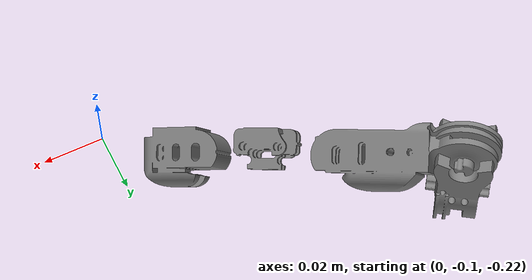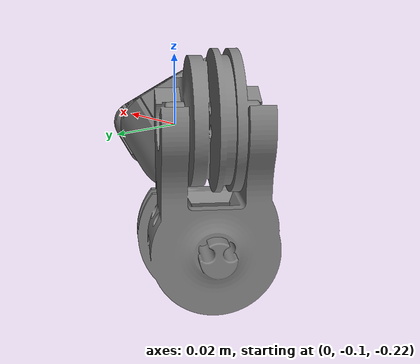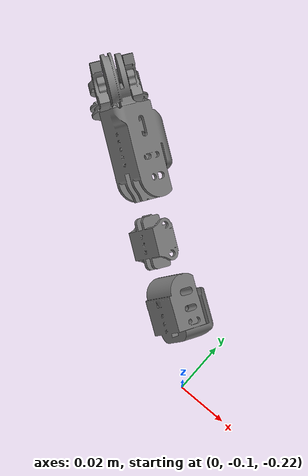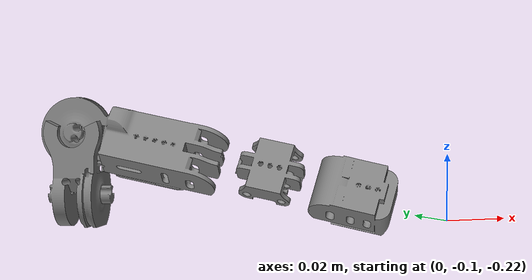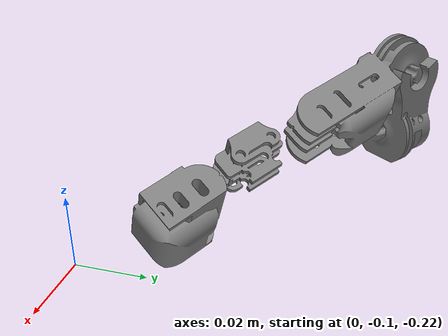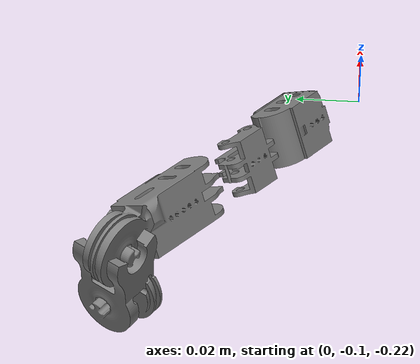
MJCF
<mujoco model="thumb_finger">
  <compiler angle="radian" autolimits="true" />
  <asset>
    <mesh name="mcp_yoke_thumb" file="meshes/mcp_yoke_thumb.stl" scale="0.001 0.001 0.001" />
    <mesh name="thumb_proximal" file="meshes/thumb_proximal.stl" scale="0.001 0.001 0.001" />
    <mesh name="thumb_mid" file="meshes/thumb_mid.stl" scale="0.001 0.001 0.001" />
    <mesh name="thumb_distal" file="meshes/thumb_distal.stl" scale="0.001 0.001 0.001" />
  </asset>
  <worldbody>
    <body name="mcp_yoke_thumb" pos="0 0 0" euler="0 0 0">
      <joint name="palm_Umdrehung-9" type="hinge" axis="-0.8191519999999993 0.5735767366272804 -1.572903137485284e-14" pos="-0.10153104624512242 -0.024288732611088232 -0.21385713339511195" range="-1.22173 1.134464" />
      <geom name="mcp_yoke_thumb_geom" type="mesh" mesh="mcp_yoke_thumb" />
      <inertial mass="0.03347955104225204" pos="-0.09240989900807843 -0.030565032090183804 -0.20986357833776567" fullinertia="3.2481420354589203e-06 3.1306417888875267e-06 1.889670501564201e-06 -1.5645146958902707e-07 9.142636141321163e-08 -5.547942197325907e-08" />
      <body name="thumb_proximal" pos="-0.18231282975099664 -0.03105311771763766 -0.23033676835845884" euler="-1.371125435412066e-14 1.5707963267948915 0">
        <joint name="mcp_yoke_thumb_thumb_mcp_flex" type="hinge" axis="2.425390482704135e-15 -0.8191520933062426 -0.5735760000000001" pos="-0.035987296842720895 0.006881764832226935 0.09348778350587392" range="-0.087266 3.316126" />
        <geom name="thumb_proximal_geom" type="mesh" mesh="thumb_proximal" />
        <inertial mass="0.06879522213833934" pos="-0.03181723928406394 -0.007662846782512525 0.10402519781244084" fullinertia="1.278497186739033e-05 1.1156616855681641e-05 6.333563483778863e-06 1.1041840018617828e-06 -2.05176050330001e-06 4.310443063190818e-06" />
        <body name="thumb_mid" pos="-0.00011147239077411026 -0.00017070632038770732 -9.711734768343105e-05" euler="6.430583366437447e-14 -2.5882095499443652e-14 -4.385380947269215e-14">
          <joint name="thumb_proximal_Umdrehung-17" type="hinge" axis="-0.8486144044511698 0.3104722028427036 0.42832299999998175" pos="-0.02916538109848334 -0.025383931113967848 0.12738390085355994" range="-0.349066 1.919862" />
          <geom name="thumb_mid_geom" type="mesh" mesh="thumb_mid" />
          <inertial mass="0.007392637360688836" pos="-0.02449341215208344 -0.03573599885769805 0.13900865957705547" fullinertia="2.714729304347932e-07 3.076359662157047e-07 2.683437018807698e-07 3.60173985966943e-08 2.0580973982570784e-08 2.8067204966686844e-08" />
          <body name="thumb_distal" pos="-0.0003234450587743812 -0.0005228153979782027 -0.0002713683904448924" euler="-2.9445292103183416e-17 3.790416564843716e-16 -1.1579615088406204e-28">
            <joint name="thumb_mid_Umdrehung-12" type="hinge" axis="-0.8486144044511698 0.3104722028427036 0.4283229999999814" pos="-0.020381403402811565 -0.03725316205628234 0.1482652692440056" range="-0.349066 1.919862" />
            <geom name="thumb_distal_geom" type="mesh" mesh="thumb_distal" />
            <inertial mass="0.035383577945329876" pos="-0.016557987088157373 -0.046738428377052936 0.1626400374671705" fullinertia="2.4130256015116007e-06 2.380128998860976e-06 1.7927095423754896e-06 9.654522013692105e-08 -2.5699961901012155e-07 2.835403203935642e-07" />
          </body>
        </body>
      </body>
    </body>
  </worldbody>
</mujoco>
